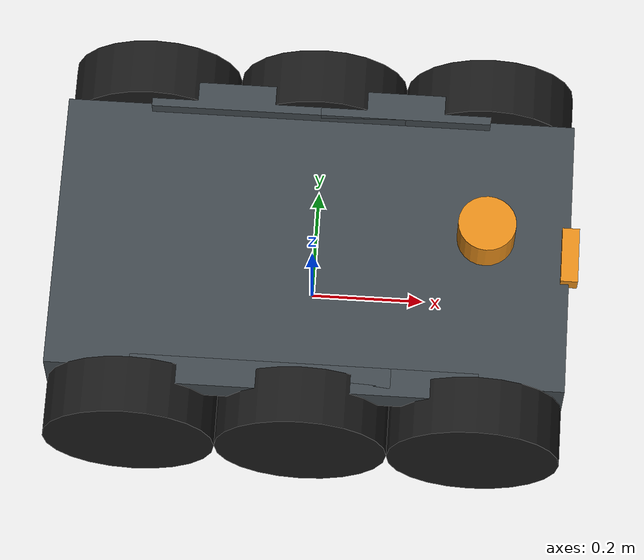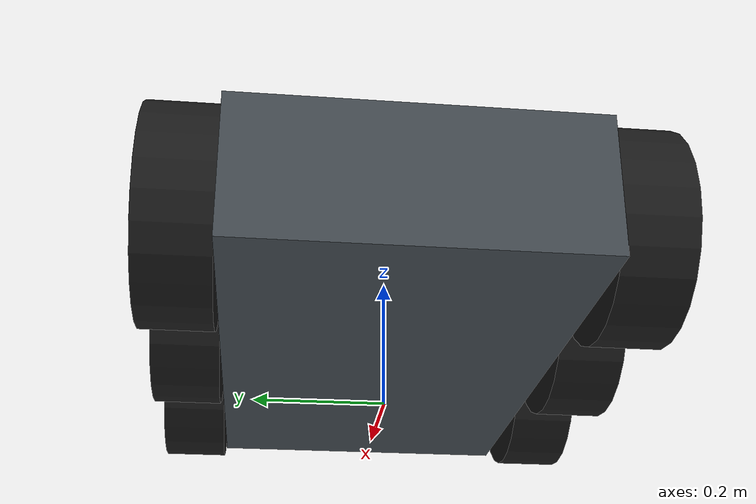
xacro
<?xml version="1.0"?>
<robot name="rover" xmlns:xacro="http://www.ros.org/wiki/xacro">

  <!-- Parameters (edit these to match your CAD once hardware exists) -->
  <!-- Body. Mass tuned so all-up bare mass ~= 15.3 kg. -->
  <xacro:property name="base_length" value="0.90"/>
  <xacro:property name="base_width"  value="0.50"/>
  <xacro:property name="base_height" value="0.20"/>
  <xacro:property name="base_mass"   value="7.0"/>

  <xacro:property name="wheel_radius" value="0.15"/>
  <xacro:property name="wheel_width"  value="0.10"/>
  <xacro:property name="wheel_mass"   value="0.6"/>

  <!-- Rocker-bogie link masses -->
  <xacro:property name="rocker_mass" value="1.2"/>
  <xacro:property name="bogie_mass"  value="0.9"/>

  <!-- Longitudinal wheel positions (x) in the base frame for the three axles -->
  <xacro:property name="axle_front_x" value="0.30"/>
  <xacro:property name="axle_mid_x"   value="0.0"/>
  <xacro:property name="axle_rear_x"  value="-0.30"/>
  <!-- Lateral offset of wheel centre from base centre (y) -->
  <xacro:property name="wheel_y"      value="0.30"/>
  <!-- Wheel centre height relative to base_link origin (z) -->
  <xacro:property name="wheel_z"      value="0.0"/>

  <!-- Rocker-bogie geometry -->
  <!-- Lateral plane of the linkage beams (wheels sit 'wheel_out' outboard of it) -->
  <xacro:property name="rocker_y"       value="0.26"/>
  <xacro:property name="wheel_out"      value="0.04"/>
  <!-- Height of the rocker/bogie pivots above the base_link origin -->
  <xacro:property name="rocker_z"       value="0.10"/>
  <!-- x of the bogie pivot in the base frame (between the mid and front axles) -->
  <xacro:property name="bogie_pivot_x"  value="0.15"/>
  <!-- Vertical drop from a pivot plane down to a wheel axle -->
  <xacro:property name="wheel_drop"     value="${wheel_z - rocker_z}"/>
  <!-- Passive pivot travel limit (rad) -->
  <xacro:property name="pivot_limit"    value="0.6"/>

  <xacro:property name="PI" value="3.1415926535897931"/>

  <!-- Inertia helper macros                                         -->
  <xacro:macro name="box_inertia" params="m x y z">
    <inertial>
      <mass value="${m}"/>
      <inertia
        ixx="${(1.0/12.0)*m*(y*y + z*z)}" ixy="0.0" ixz="0.0"
        iyy="${(1.0/12.0)*m*(x*x + z*z)}" iyz="0.0"
        izz="${(1.0/12.0)*m*(x*x + y*y)}"/>
    </inertial>
  </xacro:macro>

  <xacro:macro name="cylinder_inertia" params="m r h">
    <inertial>
      <mass value="${m}"/>
      <inertia
        ixx="${(1.0/12.0)*m*(3*r*r + h*h)}" ixy="0.0" ixz="0.0"
        iyy="${(1.0/12.0)*m*(3*r*r + h*h)}" iyz="0.0"
        izz="${0.5*m*r*r}"/>
    </inertial>
  </xacro:macro>

  <!-- base_footprint -> base_link                                   -->
  <link name="base_footprint"/>

  <joint name="base_footprint_joint" type="fixed">
    <parent link="base_footprint"/>
    <child link="base_link"/>
    <origin xyz="0 0 ${wheel_radius}" rpy="0 0 0"/>
  </joint>

  <link name="base_link">
    <visual>
      <origin xyz="0 0 0" rpy="0 0 0"/>
      <geometry>
        <box size="${base_length} ${base_width} ${base_height}"/>
      </geometry>
      <material name="rover_body"/>
    </visual>
    <collision>
      <origin xyz="0 0 0" rpy="0 0 0"/>
      <geometry>
        <box size="${base_length} ${base_width} ${base_height}"/>
      </geometry>
    </collision>
    <xacro:box_inertia m="${base_mass}" x="${base_length}" y="${base_width}" z="${base_height}"/>
  </link>

  <!-- Wheel macro                                                   -->
  <!--   prefix : unique name, e.g. front_left                       -->
  <!--   parent : link the wheel joint is mounted on                 -->
  <!--   x,y,z  : wheel centre position relative to the parent frame -->
  <xacro:macro name="wheel" params="prefix parent x y z">
    <link name="${prefix}_wheel_link">
      <visual>
        <origin xyz="0 0 0" rpy="${PI/2} 0 0"/>
        <geometry>
          <cylinder radius="${wheel_radius}" length="${wheel_width}"/>
        </geometry>
        <material name="rover_wheel"/>
      </visual>
      <collision>
        <origin xyz="0 0 0" rpy="${PI/2} 0 0"/>
        <geometry>
          <cylinder radius="${wheel_radius}" length="${wheel_width}"/>
        </geometry>
      </collision>
      <xacro:cylinder_inertia m="${wheel_mass}" r="${wheel_radius}" h="${wheel_width}"/>
    </link>

    <joint name="${prefix}_wheel_joint" type="continuous">
      <parent link="${parent}"/>
      <child link="${prefix}_wheel_link"/>
      <origin xyz="${x} ${y} ${z}" rpy="0 0 0"/>
      <axis xyz="0 1 0"/>
      <limit effort="40.0" velocity="20.0"/>
      <dynamics damping="0.1" friction="0.1"/>
    </joint>
  </xacro:macro>

  <!-- Rocker-bogie linkage macro (one per side)                     -->
  <!--   side    : "left" / "right"                                  -->
  <!--   reflect : +1 for left (+y), -1 for right (-y)               -->
  <!--   Chain: base_link (rocker_joint) rocker (bogie_joint) bogie  -->
  <!--   rocker carries the REAR wheel; bogie carries FRONT + MID.   -->
  <xacro:macro name="rocker_bogie" params="side reflect">

    <!-- Rocker arm: beam from the rear wheel (x=-0.30) to the bogie pivot (x=+0.15) -->
    <link name="${side}_rocker_link">
      <visual>
        <origin xyz="${(axle_rear_x + bogie_pivot_x)/2} 0 0" rpy="0 0 0"/>
        <geometry>
          <box size="${bogie_pivot_x - axle_rear_x} 0.05 0.05"/>
        </geometry>
        <material name="rover_body"/>
      </visual>
      <collision>
        <origin xyz="${(axle_rear_x + bogie_pivot_x)/2} 0 0" rpy="0 0 0"/>
        <geometry>
          <box size="${bogie_pivot_x - axle_rear_x} 0.05 0.05"/>
        </geometry>
      </collision>
      <xacro:box_inertia m="${rocker_mass}" x="${bogie_pivot_x - axle_rear_x}" y="0.05" z="0.05"/>
    </link>

    <!-- Rocker pivot on the body (passive revolute, y axis = pitch) -->
    <joint name="${side}_rocker_joint" type="revolute">
      <parent link="base_link"/>
      <child link="${side}_rocker_link"/>
      <origin xyz="0 ${reflect * rocker_y} ${rocker_z}" rpy="0 0 0"/>
      <axis xyz="0 1 0"/>
      <limit lower="${-pivot_limit}" upper="${pivot_limit}" effort="200.0" velocity="10.0"/>
      <dynamics damping="1.0" friction="0.5"/>
    </joint>

    <!-- Bogie beam: from the mid wheel (x=0) to the front wheel (x=+0.30) -->
    <link name="${side}_bogie_link">
      <visual>
        <origin xyz="0 0 0" rpy="0 0 0"/>
        <geometry>
          <box size="${axle_front_x - axle_mid_x} 0.05 0.05"/>
        </geometry>
        <material name="rover_body"/>
      </visual>
      <collision>
        <origin xyz="0 0 0" rpy="0 0 0"/>
        <geometry>
          <box size="${axle_front_x - axle_mid_x} 0.05 0.05"/>
        </geometry>
      </collision>
      <xacro:box_inertia m="${bogie_mass}" x="${axle_front_x - axle_mid_x}" y="0.05" z="0.05"/>
    </link>

    <!-- Bogie pivot on the front end of the rocker (passive revolute) -->
    <joint name="${side}_bogie_joint" type="revolute">
      <parent link="${side}_rocker_link"/>
      <child link="${side}_bogie_link"/>
      <origin xyz="${bogie_pivot_x} 0 0" rpy="0 0 0"/>
      <axis xyz="0 1 0"/>
      <limit lower="${-pivot_limit}" upper="${pivot_limit}" effort="200.0" velocity="10.0"/>
      <dynamics damping="1.0" friction="0.5"/>
    </joint>

    <!-- Rear wheel on the rocker -->
    <xacro:wheel prefix="rear_${side}" parent="${side}_rocker_link"
                x="${axle_rear_x}" y="${reflect * wheel_out}" z="${wheel_drop}"/>

    <!-- Front and mid wheels on the bogie (offsets are relative to the bogie pivot) -->
    <xacro:wheel prefix="front_${side}" parent="${side}_bogie_link"
                x="${axle_front_x - bogie_pivot_x}" y="${reflect * wheel_out}" z="${wheel_drop}"/>
    <xacro:wheel prefix="mid_${side}" parent="${side}_bogie_link"
                x="${axle_mid_x - bogie_pivot_x}" y="${reflect * wheel_out}" z="${wheel_drop}"/>

  </xacro:macro>

  <!-- Instantiate the two rocker-bogie sides -->
  <xacro:rocker_bogie side="left"  reflect="1"/>
  <xacro:rocker_bogie side="right" reflect="-1"/>

  <!-- Sensor mount frames                                           -->
  <!-- 3D LiDAR on a small mast at the front-top of the body -->
  <link name="lidar_link">
    <visual>
      <origin xyz="0 0 0" rpy="0 0 0"/>
      <geometry>
        <cylinder radius="0.05" length="0.07"/>
      </geometry>
      <material name="rover_sensor"/>
    </visual>
    <collision>
      <geometry>
        <cylinder radius="0.05" length="0.07"/>
      </geometry>
    </collision>
    <xacro:cylinder_inertia m="0.3" r="0.05" h="0.07"/>
  </link>
  <joint name="lidar_joint" type="fixed">
    <parent link="base_link"/>
    <child link="lidar_link"/>
    <origin xyz="0.30 0 ${base_height/2 + 0.10}" rpy="0 0 0"/>
  </joint>

  <!-- IMU rigidly attached at the body centre of mass -->
  <link name="imu_link">
    <visual>
      <geometry>
        <box size="0.03 0.03 0.01"/>
      </geometry>
      <material name="rover_sensor"/>
    </visual>
    <xacro:box_inertia m="0.05" x="0.03" y="0.03" z="0.01"/>
  </link>
  <joint name="imu_joint" type="fixed">
    <parent link="base_link"/>
    <child link="imu_link"/>
    <origin xyz="0 0 0" rpy="0 0 0"/>
  </joint>

  <!-- Forward-facing camera -->
  <link name="camera_link">
    <visual>
      <geometry>
        <box size="0.03 0.10 0.03"/>
      </geometry>
      <material name="rover_sensor"/>
    </visual>
    <xacro:box_inertia m="0.1" x="0.03" y="0.10" z="0.03"/>
  </link>
  <joint name="camera_joint" type="fixed">
    <parent link="base_link"/>
    <child link="camera_link"/>
    <origin xyz="${base_length/2} 0 ${base_height/2}" rpy="0 0 0"/>
  </joint>

  <!-- Optical frame (REP-103: camera optical z-forward, x-right, y-down) -->
  <link name="camera_optical_link"/>
  <joint name="camera_optical_joint" type="fixed">
    <parent link="camera_link"/>
    <child link="camera_optical_link"/>
    <origin xyz="0 0 0" rpy="${-PI/2} 0 ${-PI/2}"/>
  </joint>

  <!-- Materials + Gazebo plugins -->
  <xacro:include filename="$(find rover_description)/urdf/rover.gazebo.xacro"/>

</robot>

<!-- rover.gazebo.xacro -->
<robot xmlns:xacro="http://www.ros.org/wiki/xacro">

  <xacro:arg name="publish_wheel_odom_tf" default="true"/>

  <xacro:arg name="cmd_vel_topic" default="cmd_vel"/>

  <!-- ===================== RViz / visual materials ===================== -->
  <material name="rover_body">   <color rgba="0.25 0.28 0.30 1.0"/></material>
  <material name="rover_wheel">  <color rgba="0.10 0.10 0.10 1.0"/></material>
  <material name="rover_sensor"> <color rgba="0.90 0.55 0.10 1.0"/></material>

  <!-- ===================== Gazebo visual colours ====================== -->
  <gazebo reference="base_link">
    <material>Gazebo/DarkGrey</material>
  </gazebo>

  <!-- Wheel friction: high mu for skid-steer traction -->
  <xacro:macro name="wheel_gazebo" params="prefix">
    <gazebo reference="${prefix}_wheel_link">
      <material>Gazebo/Black</material>
      <mu1>1.2</mu1>
      <mu2>1.2</mu2>
      <kp>500000.0</kp>
      <kd>10.0</kd>
      <minDepth>0.001</minDepth>
      <maxVel>10.0</maxVel>
      <fdir1>1 0 0</fdir1>
    </gazebo>
  </xacro:macro>
  <xacro:wheel_gazebo prefix="front_left"/>
  <xacro:wheel_gazebo prefix="front_right"/>
  <xacro:wheel_gazebo prefix="mid_left"/>
  <xacro:wheel_gazebo prefix="mid_right"/>
  <xacro:wheel_gazebo prefix="rear_left"/>
  <xacro:wheel_gazebo prefix="rear_right"/>

  <gazebo reference="lidar_link"><material>Gazebo/Orange</material></gazebo>
  <gazebo reference="camera_link"><material>Gazebo/Orange</material></gazebo>

  <!-- Rocker-bogie linkage beams -->
  <gazebo reference="left_rocker_link"><material>Gazebo/DarkGrey</material></gazebo>
  <gazebo reference="right_rocker_link"><material>Gazebo/DarkGrey</material></gazebo>
  <gazebo reference="left_bogie_link"><material>Gazebo/Grey</material></gazebo>
  <gazebo reference="right_bogie_link"><material>Gazebo/Grey</material></gazebo>

  <!-- ===================== Skid-steer drive (3 wheel pairs) =========== -->
  <gazebo>
    <plugin name="diff_drive" filename="libgazebo_ros_diff_drive.so">
      <ros>
        <namespace>/</namespace>
        <remapping>cmd_vel:=$(arg cmd_vel_topic)</remapping>
      </ros>

      <num_wheel_pairs>3</num_wheel_pairs>

      <left_joint>front_left_wheel_joint</left_joint>
      <right_joint>front_right_wheel_joint</right_joint>
      <left_joint>mid_left_wheel_joint</left_joint>
      <right_joint>mid_right_wheel_joint</right_joint>
      <left_joint>rear_left_wheel_joint</left_joint>
      <right_joint>rear_right_wheel_joint</right_joint>

      <wheel_separation>0.60</wheel_separation>
      <wheel_separation>0.60</wheel_separation>
      <wheel_separation>0.60</wheel_separation>
      <wheel_diameter>0.30</wheel_diameter>
      <wheel_diameter>0.30</wheel_diameter>
      <wheel_diameter>0.30</wheel_diameter>

      <max_wheel_torque>40.0</max_wheel_torque>
      <max_wheel_acceleration>2.0</max_wheel_acceleration>

      <odometry_frame>odom</odometry_frame>
      <robot_base_frame>base_footprint</robot_base_frame>

      <publish_odom>true</publish_odom>
      <publish_odom_tf>$(arg publish_wheel_odom_tf)</publish_odom_tf>
      <!-- Wheel TF is published by robot_state_publisher from /joint_states; keep
           this false to avoid duplicate, conflicting transforms. -->
      <publish_wheel_tf>false</publish_wheel_tf>

      <update_rate>50.0</update_rate>
    </plugin>
  </gazebo>

  <!-- Publish joint states (wheel encoders) for robot_state_publisher -->
  <gazebo>
    <plugin name="joint_state_publisher" filename="libgazebo_ros_joint_state_publisher.so">
      <ros>
        <namespace>/</namespace>
        <remapping>~/out:=joint_states</remapping>
      </ros>
      <update_rate>50.0</update_rate>
      <!-- Driven wheel joints -->
      <joint_name>front_left_wheel_joint</joint_name>
      <joint_name>front_right_wheel_joint</joint_name>
      <joint_name>mid_left_wheel_joint</joint_name>
      <joint_name>mid_right_wheel_joint</joint_name>
      <joint_name>rear_left_wheel_joint</joint_name>
      <joint_name>rear_right_wheel_joint</joint_name>
      <!-- Passive rocker-bogie pivots (needed so robot_state_publisher can
           compute correct TF for the articulated linkage) -->
      <joint_name>left_rocker_joint</joint_name>
      <joint_name>right_rocker_joint</joint_name>
      <joint_name>left_bogie_joint</joint_name>
      <joint_name>right_bogie_joint</joint_name>
    </plugin>
  </gazebo>

  <!-- ===================== 3D LiDAR ==================================== -->
  <!-- Uses CPU "ray" for portability (works without a GPU in WSL2).
       For higher fidelity / rate on a GPU host, change type to "gpu_ray". -->
  <gazebo reference="lidar_link">
    <sensor type="ray" name="lidar_sensor">
      <pose>0 0 0 0 0 0</pose>
      <visualize>false</visualize>
      <update_rate>10</update_rate>
      <ray>
        <scan>
          <horizontal>
            <samples>360</samples>
            <resolution>1</resolution>
            <min_angle>-3.14159</min_angle>
            <max_angle>3.14159</max_angle>
          </horizontal>
          <vertical>
            <samples>16</samples>
            <resolution>1</resolution>
            <min_angle>-0.2618</min_angle>
            <max_angle>0.2618</max_angle>
          </vertical>
        </scan>
        <range>
          <min>0.30</min>
          <max>50.0</max>
          <resolution>0.01</resolution>
        </range>
        <noise>
          <type>gaussian</type>
          <mean>0.0</mean>
          <stddev>0.01</stddev>
        </noise>
      </ray>
      <plugin name="lidar_plugin" filename="libgazebo_ros_ray_sensor.so">
        <ros>
          <namespace>/</namespace>
          <remapping>~/out:=points</remapping>
        </ros>
        <output_type>sensor_msgs/PointCloud2</output_type>
        <frame_name>lidar_link</frame_name>
      </plugin>
    </sensor>
  </gazebo>

  <!-- ===================== IMU ========================================= -->
  <gazebo reference="imu_link">
    <sensor name="imu_sensor" type="imu">
      <always_on>true</always_on>
      <update_rate>100</update_rate>
      <visualize>false</visualize>
      <imu>
        <angular_velocity>
          <x><noise type="gaussian"><mean>0.0</mean><stddev>2e-4</stddev></noise></x>
          <y><noise type="gaussian"><mean>0.0</mean><stddev>2e-4</stddev></noise></y>
          <z><noise type="gaussian"><mean>0.0</mean><stddev>2e-4</stddev></noise></z>
        </angular_velocity>
        <linear_acceleration>
          <x><noise type="gaussian"><mean>0.0</mean><stddev>1.7e-2</stddev></noise></x>
          <y><noise type="gaussian"><mean>0.0</mean><stddev>1.7e-2</stddev></noise></y>
          <z><noise type="gaussian"><mean>0.0</mean><stddev>1.7e-2</stddev></noise></z>
        </linear_acceleration>
      </imu>
      <plugin name="imu_plugin" filename="libgazebo_ros_imu_sensor.so">
        <ros>
          <namespace>/</namespace>
          <remapping>~/out:=imu</remapping>
        </ros>
        <frame_name>imu_link</frame_name>
        <initial_orientation_as_reference>false</initial_orientation_as_reference>
      </plugin>
    </sensor>
  </gazebo>

  <!-- ===================== Camera ====================================== -->
  <gazebo reference="camera_link">
    <sensor type="camera" name="camera_sensor">
      <update_rate>15</update_rate>
      <visualize>false</visualize>
      <camera name="front_camera">
        <horizontal_fov>1.3962634</horizontal_fov>
        <image>
          <width>640</width>
          <height>480</height>
          <format>R8G8B8</format>
        </image>
        <clip>
          <near>0.05</near>
          <far>50.0</far>
        </clip>
      </camera>
      <plugin name="camera_plugin" filename="libgazebo_ros_camera.so">
        <ros>
          <namespace>/</namespace>
        </ros>
        <camera_name>camera</camera_name>
        <frame_name>camera_optical_link</frame_name>
      </plugin>
    </sensor>
  </gazebo>

</robot>
